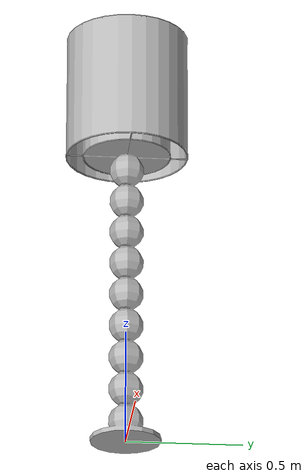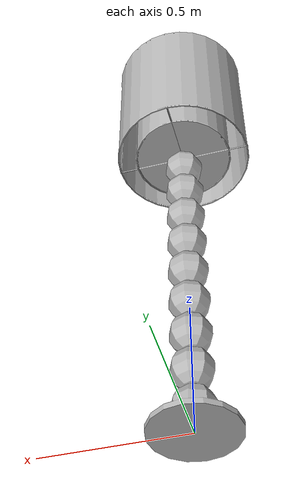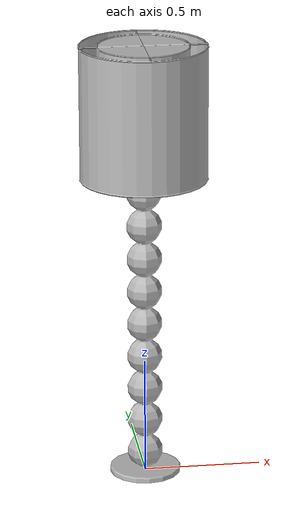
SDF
<?xml version='1.0'?>
<sdf version='1.4'>
  <model name='s__1174'>
    <pose>0 0 0 0 0 0</pose>
    <static>true</static>
    <link name='link'>
      <collision name='collision'>
        <pose>0 0 0 0 0 0</pose>
        <geometry>
          <box>
            <size>0.54 0.54 2</size>
          </box>
        </geometry>
      </collision>
      <visual name='visual'>
        <pose>0 0 0 0 0 0</pose>
        <geometry>
          <mesh><uri>model://s__1174/s__1174.dae</uri></mesh>
        </geometry>
      </visual>
    </link>
  </model>
</sdf>
